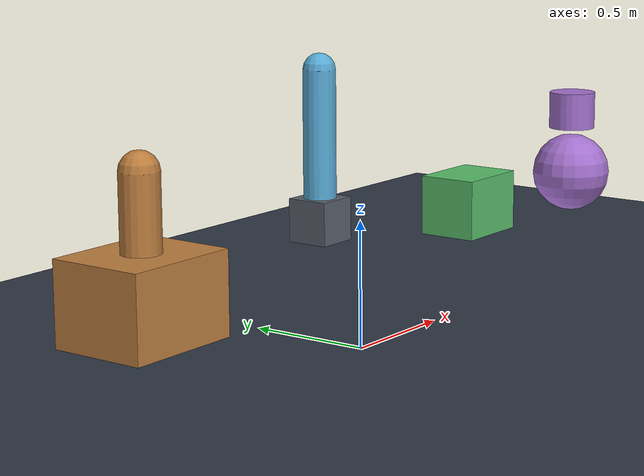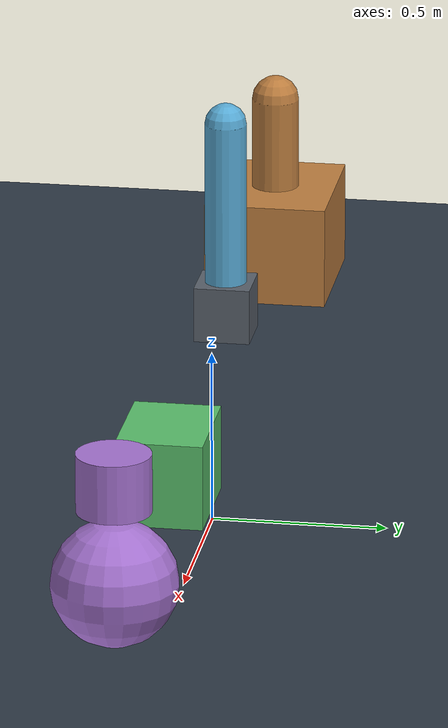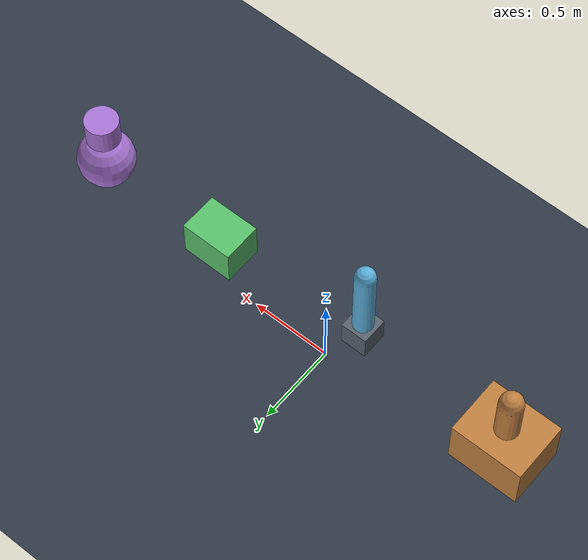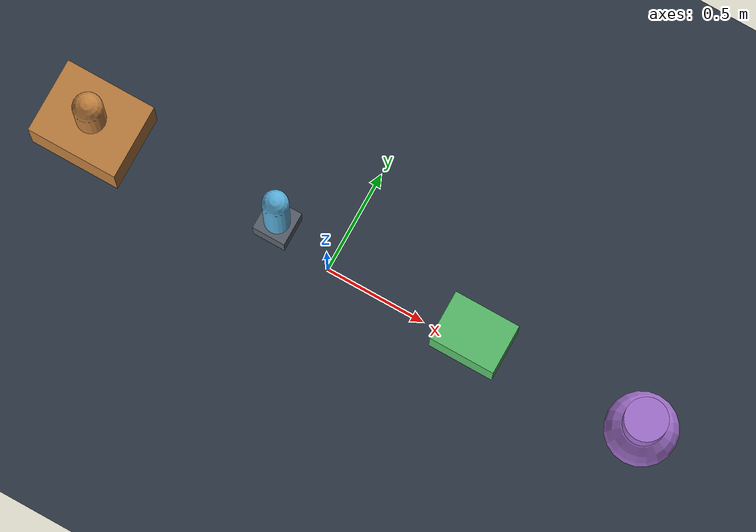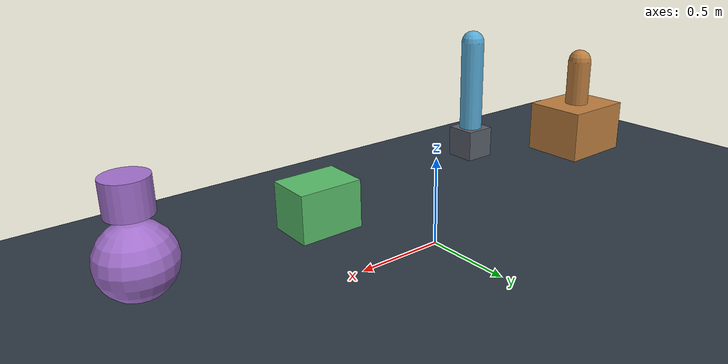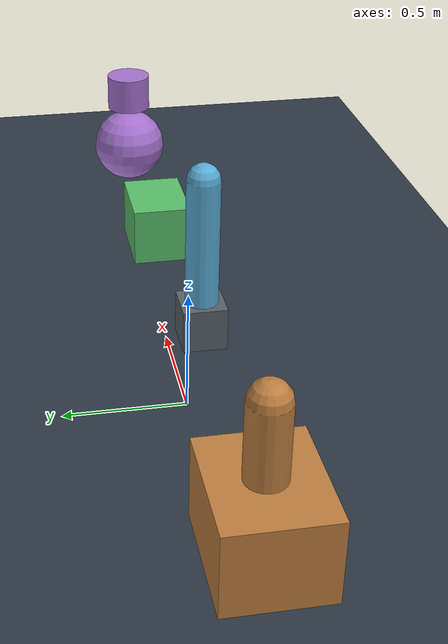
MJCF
<mujoco model="actuator_visuals">
  <compiler angle="degree" autolimits="true"/>
  <option gravity="0 0 0"/>

  <visual>
    <headlight ambient="0.25 0.25 0.25" diffuse="0.55 0.55 0.55" specular="0.35 0.35 0.35"/>
    <rgba actuatornegative="0.20 0.08 0.08 1" actuator="0.75 0.42 0.42 1"
          actuatorpositive="1 0.05 0.05 1"/>
  </visual>

  <worldbody>
    <geom name="floor" type="plane" size="0 0 0.05" rgba="0.18 0.22 0.27 1"/>
    <light name="key" type="directional" pos="2 -3 5" dir="-0.3 0.4 -1"/>
    <camera name="overview" pos="3.4 -4.5 2.8" xyaxes="0.80 0.60 0 -0.27 0.36 0.89"/>

    <body name="body_target" pos="-1.2 0 0.45">
      <freejoint/>
      <geom name="body_box" type="box" size="0.22 0.18 0.15" rgba="0.75 0.50 0.25 1"/>
      <geom name="body_capsule" type="capsule" pos="0 0 0.28" size="0.07 0.14"
            rgba="0.75 0.50 0.25 1"/>
    </body>

    <body name="hinge_anchor" pos="-0.25 0 0.55">
      <geom type="box" size="0.08 0.08 0.08" rgba="0.35 0.38 0.42 1"/>
      <body name="hinge_target">
        <joint name="hinge" type="hinge" axis="0 1 0" range="-70 70"/>
        <geom type="capsule" fromto="0 0 0 0 0 0.55" size="0.06" rgba="0.35 0.68 0.85 1"/>
      </body>
    </body>

    <body name="slide_target" pos="0.75 0 0.45">
      <joint name="slide" type="slide" axis="1 0 0" range="-0.3 0.3"/>
      <geom type="box" size="0.16 0.12 0.12" rgba="0.35 0.75 0.42 1"/>
    </body>

    <body name="site_target" pos="1.6 0 0.45">
      <freejoint/>
      <geom type="sphere" size="0.17" rgba="0.65 0.45 0.82 1"/>
      <site name="drive_site" type="cylinder" pos="0 0 0.28" size="0.10 0.08"
            rgba="0.65 0.45 0.82 1"/>
    </body>
  </worldbody>

  <actuator>
    <adhesion name="body_drive" body="body_target" gain="1" ctrlrange="0 1"/>
    <motor name="hinge_drive" joint="hinge" ctrlrange="-1 1"/>
    <general name="slide_drive" joint="slide" ctrlrange="-1 1" dyntype="filter"
             dynprm="0.15" actrange="-1 1"/>
    <motor name="site_drive" site="drive_site" gear="1 0 0 0 0 0" ctrlrange="-1 1"/>
  </actuator>
</mujoco>
